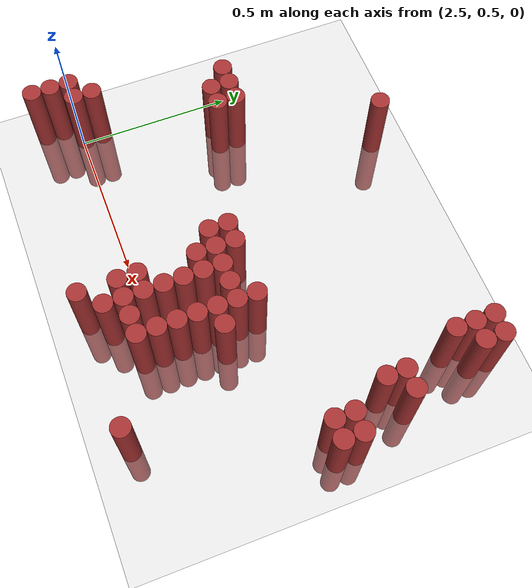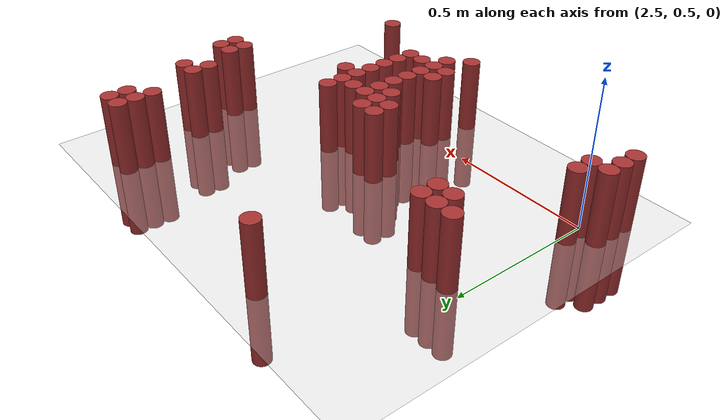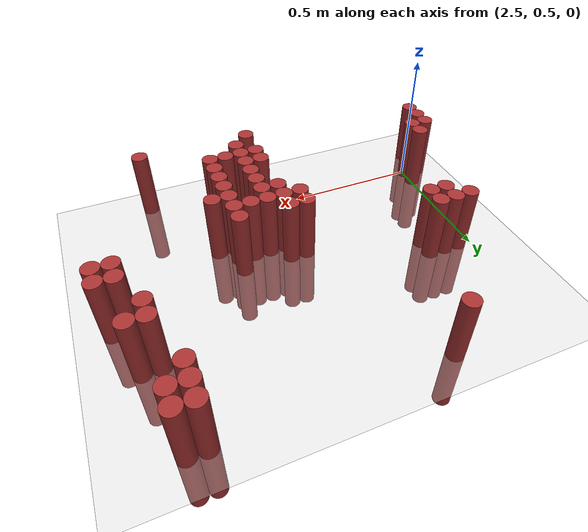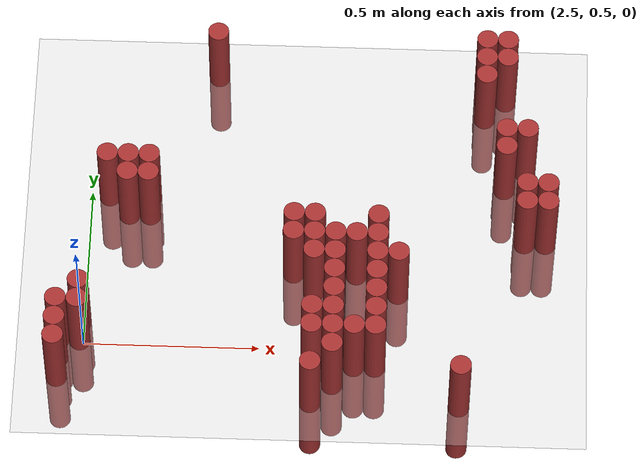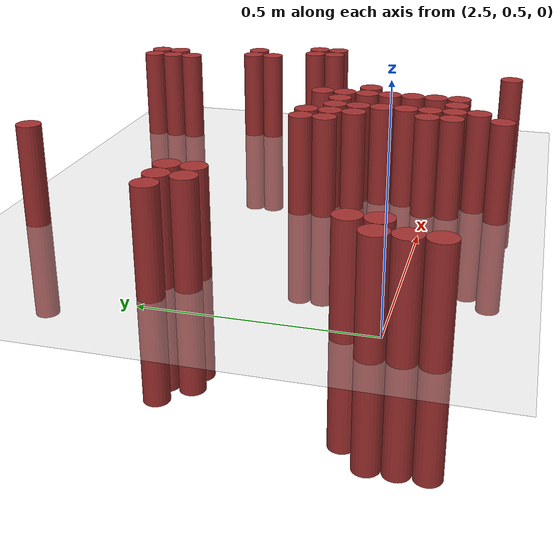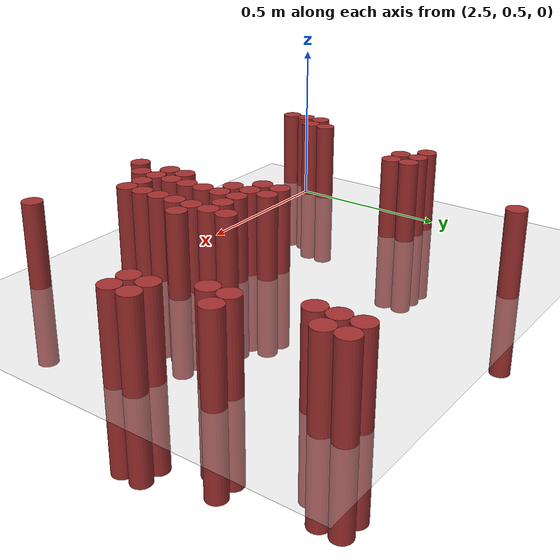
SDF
<sdf version="1.6">
 <world name="default">
  <model name="ground_plane">
   <static>1</static>
   <link name="link">
    <collision name="collision">
     <geometry><plane><normal>0 0 1</normal><size>100 100</size></plane></geometry>
     <surface><friction><ode><mu>100</mu><mu2>50</mu2></ode></friction></surface>
    </collision>
    <visual name="visual">
     <cast_shadows>0</cast_shadows>
     <geometry><plane><normal>0 0 1</normal><size>100 100</size></plane></geometry>
     <material>
      <script><uri>file://media/materials/scripts/gazebo.material</uri><name>Gazebo/Grey</name></script>
     </material>
    </visual>
   </link>
  </model>
  <model name="unit_cylinder_164">
   <static>1</static>
   <pose>2.850000 1.410000 0.000000 0.000000 0.000000 0.000000</pose>
   <link name="link">
    <inertial>
     <mass>1</mass>
     <inertia><ixx>0.145833</ixx><ixy>0</ixy><ixz>0</ixz><iyy>0.145833</iyy><iyz>0</iyz><izz>0.125</izz></inertia>
    </inertial>
    <collision name="collision">
     <geometry><cylinder><radius>0.030000</radius><length>0.5</length></cylinder></geometry>
    </collision>
    <visual name="visual">
     <geometry><cylinder><radius>0.030000</radius><length>0.5</length></cylinder></geometry>
     <material>
      <ambient>0.648000 0.192000 0.192000 1</ambient>
      <diffuse>0.648000 0.192000 0.192000 1</diffuse>
     </material>
     <material>
      <script><name>Gazebo/Grey</name><uri>file://media/materials/scripts/gazebo.material</uri></script>
     </material>
    </visual>
   </link>
  </model>
  <model name="unit_cylinder_165">
   <static>1</static>
   <pose>3.630000 1.410000 0.000000 0.000000 0.000000 0.000000</pose>
   <link name="link">
    <inertial>
     <mass>1</mass>
     <inertia><ixx>0.145833</ixx><ixy>0</ixy><ixz>0</ixz><iyy>0.145833</iyy><iyz>0</iyz><izz>0.125</izz></inertia>
    </inertial>
    <collision name="collision">
     <geometry><cylinder><radius>0.030000</radius><length>0.5</length></cylinder></geometry>
    </collision>
    <visual name="visual">
     <geometry><cylinder><radius>0.030000</radius><length>0.5</length></cylinder></geometry>
     <material>
      <ambient>0.648000 0.192000 0.192000 1</ambient>
      <diffuse>0.648000 0.192000 0.192000 1</diffuse>
     </material>
     <material>
      <script><name>Gazebo/Grey</name><uri>file://media/materials/scripts/gazebo.material</uri></script>
     </material>
    </visual>
   </link>
  </model>
  <model name="unit_cylinder_166">
   <static>1</static>
   <pose>3.690000 1.410000 0.000000 0.000000 0.000000 0.000000</pose>
   <link name="link">
    <inertial>
     <mass>1</mass>
     <inertia><ixx>0.145833</ixx><ixy>0</ixy><ixz>0</ixz><iyy>0.145833</iyy><iyz>0</iyz><izz>0.125</izz></inertia>
    </inertial>
    <collision name="collision">
     <geometry><cylinder><radius>0.030000</radius><length>0.5</length></cylinder></geometry>
    </collision>
    <visual name="visual">
     <geometry><cylinder><radius>0.030000</radius><length>0.5</length></cylinder></geometry>
     <material>
      <ambient>0.648000 0.192000 0.192000 1</ambient>
      <diffuse>0.648000 0.192000 0.192000 1</diffuse>
     </material>
     <material>
      <script><name>Gazebo/Grey</name><uri>file://media/materials/scripts/gazebo.material</uri></script>
     </material>
    </visual>
   </link>
  </model>
  <model name="unit_cylinder_168">
   <static>1</static>
   <pose>3.630000 1.350000 0.000000 0.000000 0.000000 0.000000</pose>
   <link name="link">
    <inertial>
     <mass>1</mass>
     <inertia><ixx>0.145833</ixx><ixy>0</ixy><ixz>0</ixz><iyy>0.145833</iyy><iyz>0</iyz><izz>0.125</izz></inertia>
    </inertial>
    <collision name="collision">
     <geometry><cylinder><radius>0.030000</radius><length>0.5</length></cylinder></geometry>
    </collision>
    <visual name="visual">
     <geometry><cylinder><radius>0.030000</radius><length>0.5</length></cylinder></geometry>
     <material>
      <ambient>0.648000 0.192000 0.192000 1</ambient>
      <diffuse>0.648000 0.192000 0.192000 1</diffuse>
     </material>
     <material>
      <script><name>Gazebo/Grey</name><uri>file://media/materials/scripts/gazebo.material</uri></script>
     </material>
    </visual>
   </link>
  </model>
  <model name="unit_cylinder_169">
   <static>1</static>
   <pose>3.690000 1.350000 0.000000 0.000000 0.000000 0.000000</pose>
   <link name="link">
    <inertial>
     <mass>1</mass>
     <inertia><ixx>0.145833</ixx><ixy>0</ixy><ixz>0</ixz><iyy>0.145833</iyy><iyz>0</iyz><izz>0.125</izz></inertia>
    </inertial>
    <collision name="collision">
     <geometry><cylinder><radius>0.030000</radius><length>0.5</length></cylinder></geometry>
    </collision>
    <visual name="visual">
     <geometry><cylinder><radius>0.030000</radius><length>0.5</length></cylinder></geometry>
     <material>
      <ambient>0.648000 0.192000 0.192000 1</ambient>
      <diffuse>0.648000 0.192000 0.192000 1</diffuse>
     </material>
     <material>
      <script><name>Gazebo/Grey</name><uri>file://media/materials/scripts/gazebo.material</uri></script>
     </material>
    </visual>
   </link>
  </model>
  <model name="unit_cylinder_170">
   <static>1</static>
   <pose>3.630000 1.290000 0.000000 0.000000 0.000000 0.000000</pose>
   <link name="link">
    <inertial>
     <mass>1</mass>
     <inertia><ixx>0.145833</ixx><ixy>0</ixy><ixz>0</ixz><iyy>0.145833</iyy><iyz>0</iyz><izz>0.125</izz></inertia>
    </inertial>
    <collision name="collision">
     <geometry><cylinder><radius>0.030000</radius><length>0.5</length></cylinder></geometry>
    </collision>
    <visual name="visual">
     <geometry><cylinder><radius>0.030000</radius><length>0.5</length></cylinder></geometry>
     <material>
      <ambient>0.648000 0.192000 0.192000 1</ambient>
      <diffuse>0.648000 0.192000 0.192000 1</diffuse>
     </material>
     <material>
      <script><name>Gazebo/Grey</name><uri>file://media/materials/scripts/gazebo.material</uri></script>
     </material>
    </visual>
   </link>
  </model>
  <model name="unit_cylinder_174">
   <static>1</static>
   <pose>3.690000 1.110000 0.000000 0.000000 0.000000 0.000000</pose>
   <link name="link">
    <inertial>
     <mass>1</mass>
     <inertia><ixx>0.145833</ixx><ixy>0</ixy><ixz>0</ixz><iyy>0.145833</iyy><iyz>0</iyz><izz>0.125</izz></inertia>
    </inertial>
    <collision name="collision">
     <geometry><cylinder><radius>0.030000</radius><length>0.5</length></cylinder></geometry>
    </collision>
    <visual name="visual">
     <geometry><cylinder><radius>0.030000</radius><length>0.5</length></cylinder></geometry>
     <material>
      <ambient>0.648000 0.192000 0.192000 1</ambient>
      <diffuse>0.648000 0.192000 0.192000 1</diffuse>
     </material>
     <material>
      <script><name>Gazebo/Grey</name><uri>file://media/materials/scripts/gazebo.material</uri></script>
     </material>
    </visual>
   </link>
  </model>
  <model name="unit_cylinder_175">
   <static>1</static>
   <pose>3.750000 1.110000 0.000000 0.000000 0.000000 0.000000</pose>
   <link name="link">
    <inertial>
     <mass>1</mass>
     <inertia><ixx>0.145833</ixx><ixy>0</ixy><ixz>0</ixz><iyy>0.145833</iyy><iyz>0</iyz><izz>0.125</izz></inertia>
    </inertial>
    <collision name="collision">
     <geometry><cylinder><radius>0.030000</radius><length>0.5</length></cylinder></geometry>
    </collision>
    <visual name="visual">
     <geometry><cylinder><radius>0.030000</radius><length>0.5</length></cylinder></geometry>
     <material>
      <ambient>0.648000 0.192000 0.192000 1</ambient>
      <diffuse>0.648000 0.192000 0.192000 1</diffuse>
     </material>
     <material>
      <script><name>Gazebo/Grey</name><uri>file://media/materials/scripts/gazebo.material</uri></script>
     </material>
    </visual>
   </link>
  </model>
  <model name="unit_cylinder_177">
   <static>1</static>
   <pose>3.690000 1.050000 0.000000 0.000000 0.000000 0.000000</pose>
   <link name="link">
    <inertial>
     <mass>1</mass>
     <inertia><ixx>0.145833</ixx><ixy>0</ixy><ixz>0</ixz><iyy>0.145833</iyy><iyz>0</iyz><izz>0.125</izz></inertia>
    </inertial>
    <collision name="collision">
     <geometry><cylinder><radius>0.030000</radius><length>0.5</length></cylinder></geometry>
    </collision>
    <visual name="visual">
     <geometry><cylinder><radius>0.030000</radius><length>0.5</length></cylinder></geometry>
     <material>
      <ambient>0.648000 0.192000 0.192000 1</ambient>
      <diffuse>0.648000 0.192000 0.192000 1</diffuse>
     </material>
     <material>
      <script><name>Gazebo/Grey</name><uri>file://media/materials/scripts/gazebo.material</uri></script>
     </material>
    </visual>
   </link>
  </model>
  <model name="unit_cylinder_180">
   <static>1</static>
   <pose>2.550000 0.990000 0.000000 0.000000 0.000000 0.000000</pose>
   <link name="link">
    <inertial>
     <mass>1</mass>
     <inertia><ixx>0.145833</ixx><ixy>0</ixy><ixz>0</ixz><iyy>0.145833</iyy><iyz>0</iyz><izz>0.125</izz></inertia>
    </inertial>
    <collision name="collision">
     <geometry><cylinder><radius>0.030000</radius><length>0.5</length></cylinder></geometry>
    </collision>
    <visual name="visual">
     <geometry><cylinder><radius>0.030000</radius><length>0.5</length></cylinder></geometry>
     <material>
      <ambient>0.648000 0.192000 0.192000 1</ambient>
      <diffuse>0.648000 0.192000 0.192000 1</diffuse>
     </material>
     <material>
      <script><name>Gazebo/Grey</name><uri>file://media/materials/scripts/gazebo.material</uri></script>
     </material>
    </visual>
   </link>
  </model>
  <model name="unit_cylinder_181">
   <static>1</static>
   <pose>2.610000 0.990000 0.000000 0.000000 0.000000 0.000000</pose>
   <link name="link">
    <inertial>
     <mass>1</mass>
     <inertia><ixx>0.145833</ixx><ixy>0</ixy><ixz>0</ixz><iyy>0.145833</iyy><iyz>0</iyz><izz>0.125</izz></inertia>
    </inertial>
    <collision name="collision">
     <geometry><cylinder><radius>0.030000</radius><length>0.5</length></cylinder></geometry>
    </collision>
    <visual name="visual">
     <geometry><cylinder><radius>0.030000</radius><length>0.5</length></cylinder></geometry>
     <material>
      <ambient>0.648000 0.192000 0.192000 1</ambient>
      <diffuse>0.648000 0.192000 0.192000 1</diffuse>
     </material>
     <material>
      <script><name>Gazebo/Grey</name><uri>file://media/materials/scripts/gazebo.material</uri></script>
     </material>
    </visual>
   </link>
  </model>
  <model name="unit_cylinder_182">
   <static>1</static>
   <pose>2.670000 0.990000 0.000000 0.000000 0.000000 0.000000</pose>
   <link name="link">
    <inertial>
     <mass>1</mass>
     <inertia><ixx>0.145833</ixx><ixy>0</ixy><ixz>0</ixz><iyy>0.145833</iyy><iyz>0</iyz><izz>0.125</izz></inertia>
    </inertial>
    <collision name="collision">
     <geometry><cylinder><radius>0.030000</radius><length>0.5</length></cylinder></geometry>
    </collision>
    <visual name="visual">
     <geometry><cylinder><radius>0.030000</radius><length>0.5</length></cylinder></geometry>
     <material>
      <ambient>0.648000 0.192000 0.192000 1</ambient>
      <diffuse>0.648000 0.192000 0.192000 1</diffuse>
     </material>
     <material>
      <script><name>Gazebo/Grey</name><uri>file://media/materials/scripts/gazebo.material</uri></script>
     </material>
    </visual>
   </link>
  </model>
  <model name="unit_cylinder_185">
   <static>1</static>
   <pose>2.610000 0.930000 0.000000 0.000000 0.000000 0.000000</pose>
   <link name="link">
    <inertial>
     <mass>1</mass>
     <inertia><ixx>0.145833</ixx><ixy>0</ixy><ixz>0</ixz><iyy>0.145833</iyy><iyz>0</iyz><izz>0.125</izz></inertia>
    </inertial>
    <collision name="collision">
     <geometry><cylinder><radius>0.030000</radius><length>0.5</length></cylinder></geometry>
    </collision>
    <visual name="visual">
     <geometry><cylinder><radius>0.030000</radius><length>0.5</length></cylinder></geometry>
     <material>
      <ambient>0.648000 0.192000 0.192000 1</ambient>
      <diffuse>0.648000 0.192000 0.192000 1</diffuse>
     </material>
     <material>
      <script><name>Gazebo/Grey</name><uri>file://media/materials/scripts/gazebo.material</uri></script>
     </material>
    </visual>
   </link>
  </model>
  <model name="unit_cylinder_186">
   <static>1</static>
   <pose>2.670000 0.930000 0.000000 0.000000 0.000000 0.000000</pose>
   <link name="link">
    <inertial>
     <mass>1</mass>
     <inertia><ixx>0.145833</ixx><ixy>0</ixy><ixz>0</ixz><iyy>0.145833</iyy><iyz>0</iyz><izz>0.125</izz></inertia>
    </inertial>
    <collision name="collision">
     <geometry><cylinder><radius>0.030000</radius><length>0.5</length></cylinder></geometry>
    </collision>
    <visual name="visual">
     <geometry><cylinder><radius>0.030000</radius><length>0.5</length></cylinder></geometry>
     <material>
      <ambient>0.648000 0.192000 0.192000 1</ambient>
      <diffuse>0.648000 0.192000 0.192000 1</diffuse>
     </material>
     <material>
      <script><name>Gazebo/Grey</name><uri>file://media/materials/scripts/gazebo.material</uri></script>
     </material>
    </visual>
   </link>
  </model>
  <model name="unit_cylinder_187">
   <static>1</static>
   <pose>3.750000 0.930000 0.000000 0.000000 0.000000 0.000000</pose>
   <link name="link">
    <inertial>
     <mass>1</mass>
     <inertia><ixx>0.145833</ixx><ixy>0</ixy><ixz>0</ixz><iyy>0.145833</iyy><iyz>0</iyz><izz>0.125</izz></inertia>
    </inertial>
    <collision name="collision">
     <geometry><cylinder><radius>0.030000</radius><length>0.5</length></cylinder></geometry>
    </collision>
    <visual name="visual">
     <geometry><cylinder><radius>0.030000</radius><length>0.5</length></cylinder></geometry>
     <material>
      <ambient>0.648000 0.192000 0.192000 1</ambient>
      <diffuse>0.648000 0.192000 0.192000 1</diffuse>
     </material>
     <material>
      <script><name>Gazebo/Grey</name><uri>file://media/materials/scripts/gazebo.material</uri></script>
     </material>
    </visual>
   </link>
  </model>
  <model name="unit_cylinder_188">
   <static>1</static>
   <pose>3.810000 0.930000 0.000000 0.000000 0.000000 0.000000</pose>
   <link name="link">
    <inertial>
     <mass>1</mass>
     <inertia><ixx>0.145833</ixx><ixy>0</ixy><ixz>0</ixz><iyy>0.145833</iyy><iyz>0</iyz><izz>0.125</izz></inertia>
    </inertial>
    <collision name="collision">
     <geometry><cylinder><radius>0.030000</radius><length>0.5</length></cylinder></geometry>
    </collision>
    <visual name="visual">
     <geometry><cylinder><radius>0.030000</radius><length>0.5</length></cylinder></geometry>
     <material>
      <ambient>0.648000 0.192000 0.192000 1</ambient>
      <diffuse>0.648000 0.192000 0.192000 1</diffuse>
     </material>
     <material>
      <script><name>Gazebo/Grey</name><uri>file://media/materials/scripts/gazebo.material</uri></script>
     </material>
    </visual>
   </link>
  </model>
  <model name="unit_cylinder_189">
   <static>1</static>
   <pose>3.750000 0.870000 0.000000 0.000000 0.000000 0.000000</pose>
   <link name="link">
    <inertial>
     <mass>1</mass>
     <inertia><ixx>0.145833</ixx><ixy>0</ixy><ixz>0</ixz><iyy>0.145833</iyy><iyz>0</iyz><izz>0.125</izz></inertia>
    </inertial>
    <collision name="collision">
     <geometry><cylinder><radius>0.030000</radius><length>0.5</length></cylinder></geometry>
    </collision>
    <visual name="visual">
     <geometry><cylinder><radius>0.030000</radius><length>0.5</length></cylinder></geometry>
     <material>
      <ambient>0.648000 0.192000 0.192000 1</ambient>
      <diffuse>0.648000 0.192000 0.192000 1</diffuse>
     </material>
     <material>
      <script><name>Gazebo/Grey</name><uri>file://media/materials/scripts/gazebo.material</uri></script>
     </material>
    </visual>
   </link>
  </model>
  <model name="unit_cylinder_190">
   <static>1</static>
   <pose>3.810000 0.870000 0.000000 0.000000 0.000000 0.000000</pose>
   <link name="link">
    <inertial>
     <mass>1</mass>
     <inertia><ixx>0.145833</ixx><ixy>0</ixy><ixz>0</ixz><iyy>0.145833</iyy><iyz>0</iyz><izz>0.125</izz></inertia>
    </inertial>
    <collision name="collision">
     <geometry><cylinder><radius>0.030000</radius><length>0.5</length></cylinder></geometry>
    </collision>
    <visual name="visual">
     <geometry><cylinder><radius>0.030000</radius><length>0.5</length></cylinder></geometry>
     <material>
      <ambient>0.648000 0.192000 0.192000 1</ambient>
      <diffuse>0.648000 0.192000 0.192000 1</diffuse>
     </material>
     <material>
      <script><name>Gazebo/Grey</name><uri>file://media/materials/scripts/gazebo.material</uri></script>
     </material>
    </visual>
   </link>
  </model>
  <model name="unit_cylinder_191">
   <static>1</static>
   <pose>3.090000 0.810000 0.000000 0.000000 0.000000 0.000000</pose>
   <link name="link">
    <inertial>
     <mass>1</mass>
     <inertia><ixx>0.145833</ixx><ixy>0</ixy><ixz>0</ixz><iyy>0.145833</iyy><iyz>0</iyz><izz>0.125</izz></inertia>
    </inertial>
    <collision name="collision">
     <geometry><cylinder><radius>0.030000</radius><length>0.5</length></cylinder></geometry>
    </collision>
    <visual name="visual">
     <geometry><cylinder><radius>0.030000</radius><length>0.5</length></cylinder></geometry>
     <material>
      <ambient>0.648000 0.192000 0.192000 1</ambient>
      <diffuse>0.648000 0.192000 0.192000 1</diffuse>
     </material>
     <material>
      <script><name>Gazebo/Grey</name><uri>file://media/materials/scripts/gazebo.material</uri></script>
     </material>
    </visual>
   </link>
  </model>
  <model name="unit_cylinder_192">
   <static>1</static>
   <pose>3.150000 0.810000 0.000000 0.000000 0.000000 0.000000</pose>
   <link name="link">
    <inertial>
     <mass>1</mass>
     <inertia><ixx>0.145833</ixx><ixy>0</ixy><ixz>0</ixz><iyy>0.145833</iyy><iyz>0</iyz><izz>0.125</izz></inertia>
    </inertial>
    <collision name="collision">
     <geometry><cylinder><radius>0.030000</radius><length>0.5</length></cylinder></geometry>
    </collision>
    <visual name="visual">
     <geometry><cylinder><radius>0.030000</radius><length>0.5</length></cylinder></geometry>
     <material>
      <ambient>0.648000 0.192000 0.192000 1</ambient>
      <diffuse>0.648000 0.192000 0.192000 1</diffuse>
     </material>
     <material>
      <script><name>Gazebo/Grey</name><uri>file://media/materials/scripts/gazebo.material</uri></script>
     </material>
    </visual>
   </link>
  </model>
  <model name="unit_cylinder_193">
   <static>1</static>
   <pose>3.330000 0.810000 0.000000 0.000000 0.000000 0.000000</pose>
   <link name="link">
    <inertial>
     <mass>1</mass>
     <inertia><ixx>0.145833</ixx><ixy>0</ixy><ixz>0</ixz><iyy>0.145833</iyy><iyz>0</iyz><izz>0.125</izz></inertia>
    </inertial>
    <collision name="collision">
     <geometry><cylinder><radius>0.030000</radius><length>0.5</length></cylinder></geometry>
    </collision>
    <visual name="visual">
     <geometry><cylinder><radius>0.030000</radius><length>0.5</length></cylinder></geometry>
     <material>
      <ambient>0.648000 0.192000 0.192000 1</ambient>
      <diffuse>0.648000 0.192000 0.192000 1</diffuse>
     </material>
     <material>
      <script><name>Gazebo/Grey</name><uri>file://media/materials/scripts/gazebo.material</uri></script>
     </material>
    </visual>
   </link>
  </model>
  <model name="unit_cylinder_194">
   <static>1</static>
   <pose>3.090000 0.750000 0.000000 0.000000 0.000000 0.000000</pose>
   <link name="link">
    <inertial>
     <mass>1</mass>
     <inertia><ixx>0.145833</ixx><ixy>0</ixy><ixz>0</ixz><iyy>0.145833</iyy><iyz>0</iyz><izz>0.125</izz></inertia>
    </inertial>
    <collision name="collision">
     <geometry><cylinder><radius>0.030000</radius><length>0.5</length></cylinder></geometry>
    </collision>
    <visual name="visual">
     <geometry><cylinder><radius>0.030000</radius><length>0.5</length></cylinder></geometry>
     <material>
      <ambient>0.648000 0.192000 0.192000 1</ambient>
      <diffuse>0.648000 0.192000 0.192000 1</diffuse>
     </material>
     <material>
      <script><name>Gazebo/Grey</name><uri>file://media/materials/scripts/gazebo.material</uri></script>
     </material>
    </visual>
   </link>
  </model>
  <model name="unit_cylinder_195">
   <static>1</static>
   <pose>3.150000 0.750000 0.000000 0.000000 0.000000 0.000000</pose>
   <link name="link">
    <inertial>
     <mass>1</mass>
     <inertia><ixx>0.145833</ixx><ixy>0</ixy><ixz>0</ixz><iyy>0.145833</iyy><iyz>0</iyz><izz>0.125</izz></inertia>
    </inertial>
    <collision name="collision">
     <geometry><cylinder><radius>0.030000</radius><length>0.5</length></cylinder></geometry>
    </collision>
    <visual name="visual">
     <geometry><cylinder><radius>0.030000</radius><length>0.5</length></cylinder></geometry>
     <material>
      <ambient>0.648000 0.192000 0.192000 1</ambient>
      <diffuse>0.648000 0.192000 0.192000 1</diffuse>
     </material>
     <material>
      <script><name>Gazebo/Grey</name><uri>file://media/materials/scripts/gazebo.material</uri></script>
     </material>
    </visual>
   </link>
  </model>
  <model name="unit_cylinder_196">
   <static>1</static>
   <pose>3.210000 0.750000 0.000000 0.000000 0.000000 0.000000</pose>
   <link name="link">
    <inertial>
     <mass>1</mass>
     <inertia><ixx>0.145833</ixx><ixy>0</ixy><ixz>0</ixz><iyy>0.145833</iyy><iyz>0</iyz><izz>0.125</izz></inertia>
    </inertial>
    <collision name="collision">
     <geometry><cylinder><radius>0.030000</radius><length>0.5</length></cylinder></geometry>
    </collision>
    <visual name="visual">
     <geometry><cylinder><radius>0.030000</radius><length>0.5</length></cylinder></geometry>
     <material>
      <ambient>0.648000 0.192000 0.192000 1</ambient>
      <diffuse>0.648000 0.192000 0.192000 1</diffuse>
     </material>
     <material>
      <script><name>Gazebo/Grey</name><uri>file://media/materials/scripts/gazebo.material</uri></script>
     </material>
    </visual>
   </link>
  </model>
  <model name="unit_cylinder_197">
   <static>1</static>
   <pose>3.270000 0.750000 0.000000 0.000000 0.000000 0.000000</pose>
   <link name="link">
    <inertial>
     <mass>1</mass>
     <inertia><ixx>0.145833</ixx><ixy>0</ixy><ixz>0</ixz><iyy>0.145833</iyy><iyz>0</iyz><izz>0.125</izz></inertia>
    </inertial>
    <collision name="collision">
     <geometry><cylinder><radius>0.030000</radius><length>0.5</length></cylinder></geometry>
    </collision>
    <visual name="visual">
     <geometry><cylinder><radius>0.030000</radius><length>0.5</length></cylinder></geometry>
     <material>
      <ambient>0.648000 0.192000 0.192000 1</ambient>
      <diffuse>0.648000 0.192000 0.192000 1</diffuse>
     </material>
     <material>
      <script><name>Gazebo/Grey</name><uri>file://media/materials/scripts/gazebo.material</uri></script>
     </material>
    </visual>
   </link>
  </model>
  <model name="unit_cylinder_198">
   <static>1</static>
   <pose>3.330000 0.750000 0.000000 0.000000 0.000000 0.000000</pose>
   <link name="link">
    <inertial>
     <mass>1</mass>
     <inertia><ixx>0.145833</ixx><ixy>0</ixy><ixz>0</ixz><iyy>0.145833</iyy><iyz>0</iyz><izz>0.125</izz></inertia>
    </inertial>
    <collision name="collision">
     <geometry><cylinder><radius>0.030000</radius><length>0.5</length></cylinder></geometry>
    </collision>
    <visual name="visual">
     <geometry><cylinder><radius>0.030000</radius><length>0.5</length></cylinder></geometry>
     <material>
      <ambient>0.648000 0.192000 0.192000 1</ambient>
      <diffuse>0.648000 0.192000 0.192000 1</diffuse>
     </material>
     <material>
      <script><name>Gazebo/Grey</name><uri>file://media/materials/scripts/gazebo.material</uri></script>
     </material>
    </visual>
   </link>
  </model>
  <model name="unit_cylinder_199">
   <static>1</static>
   <pose>3.150000 0.690000 0.000000 0.000000 0.000000 0.000000</pose>
   <link name="link">
    <inertial>
     <mass>1</mass>
     <inertia><ixx>0.145833</ixx><ixy>0</ixy><ixz>0</ixz><iyy>0.145833</iyy><iyz>0</iyz><izz>0.125</izz></inertia>
    </inertial>
    <collision name="collision">
     <geometry><cylinder><radius>0.030000</radius><length>0.5</length></cylinder></geometry>
    </collision>
    <visual name="visual">
     <geometry><cylinder><radius>0.030000</radius><length>0.5</length></cylinder></geometry>
     <material>
      <ambient>0.648000 0.192000 0.192000 1</ambient>
      <diffuse>0.648000 0.192000 0.192000 1</diffuse>
     </material>
     <material>
      <script><name>Gazebo/Grey</name><uri>file://media/materials/scripts/gazebo.material</uri></script>
     </material>
    </visual>
   </link>
  </model>
  <model name="unit_cylinder_200">
   <static>1</static>
   <pose>3.210000 0.690000 0.000000 0.000000 0.000000 0.000000</pose>
   <link name="link">
    <inertial>
     <mass>1</mass>
     <inertia><ixx>0.145833</ixx><ixy>0</ixy><ixz>0</ixz><iyy>0.145833</iyy><iyz>0</iyz><izz>0.125</izz></inertia>
    </inertial>
    <collision name="collision">
     <geometry><cylinder><radius>0.030000</radius><length>0.5</length></cylinder></geometry>
    </collision>
    <visual name="visual">
     <geometry><cylinder><radius>0.030000</radius><length>0.5</length></cylinder></geometry>
     <material>
      <ambient>0.648000 0.192000 0.192000 1</ambient>
      <diffuse>0.648000 0.192000 0.192000 1</diffuse>
     </material>
     <material>
      <script><name>Gazebo/Grey</name><uri>file://media/materials/scripts/gazebo.material</uri></script>
     </material>
    </visual>
   </link>
  </model>
  <model name="unit_cylinder_201">
   <static>1</static>
   <pose>3.330000 0.690000 0.000000 0.000000 0.000000 0.000000</pose>
   <link name="link">
    <inertial>
     <mass>1</mass>
     <inertia><ixx>0.145833</ixx><ixy>0</ixy><ixz>0</ixz><iyy>0.145833</iyy><iyz>0</iyz><izz>0.125</izz></inertia>
    </inertial>
    <collision name="collision">
     <geometry><cylinder><radius>0.030000</radius><length>0.5</length></cylinder></geometry>
    </collision>
    <visual name="visual">
     <geometry><cylinder><radius>0.030000</radius><length>0.5</length></cylinder></geometry>
     <material>
      <ambient>0.648000 0.192000 0.192000 1</ambient>
      <diffuse>0.648000 0.192000 0.192000 1</diffuse>
     </material>
     <material>
      <script><name>Gazebo/Grey</name><uri>file://media/materials/scripts/gazebo.material</uri></script>
     </material>
    </visual>
   </link>
  </model>
  <model name="unit_cylinder_202">
   <static>1</static>
   <pose>3.390000 0.690000 0.000000 0.000000 0.000000 0.000000</pose>
   <link name="link">
    <inertial>
     <mass>1</mass>
     <inertia><ixx>0.145833</ixx><ixy>0</ixy><ixz>0</ixz><iyy>0.145833</iyy><iyz>0</iyz><izz>0.125</izz></inertia>
    </inertial>
    <collision name="collision">
     <geometry><cylinder><radius>0.030000</radius><length>0.5</length></cylinder></geometry>
    </collision>
    <visual name="visual">
     <geometry><cylinder><radius>0.030000</radius><length>0.5</length></cylinder></geometry>
     <material>
      <ambient>0.648000 0.192000 0.192000 1</ambient>
      <diffuse>0.648000 0.192000 0.192000 1</diffuse>
     </material>
     <material>
      <script><name>Gazebo/Grey</name><uri>file://media/materials/scripts/gazebo.material</uri></script>
     </material>
    </visual>
   </link>
  </model>
  <model name="unit_cylinder_203">
   <static>1</static>
   <pose>3.210000 0.630000 0.000000 0.000000 0.000000 0.000000</pose>
   <link name="link">
    <inertial>
     <mass>1</mass>
     <inertia><ixx>0.145833</ixx><ixy>0</ixy><ixz>0</ixz><iyy>0.145833</iyy><iyz>0</iyz><izz>0.125</izz></inertia>
    </inertial>
    <collision name="collision">
     <geometry><cylinder><radius>0.030000</radius><length>0.5</length></cylinder></geometry>
    </collision>
    <visual name="visual">
     <geometry><cylinder><radius>0.030000</radius><length>0.5</length></cylinder></geometry>
     <material>
      <ambient>0.648000 0.192000 0.192000 1</ambient>
      <diffuse>0.648000 0.192000 0.192000 1</diffuse>
     </material>
     <material>
      <script><name>Gazebo/Grey</name><uri>file://media/materials/scripts/gazebo.material</uri></script>
     </material>
    </visual>
   </link>
  </model>
  <model name="unit_cylinder_204">
   <static>1</static>
   <pose>3.330000 0.630000 0.000000 0.000000 0.000000 0.000000</pose>
   <link name="link">
    <inertial>
     <mass>1</mass>
     <inertia><ixx>0.145833</ixx><ixy>0</ixy><ixz>0</ixz><iyy>0.145833</iyy><iyz>0</iyz><izz>0.125</izz></inertia>
    </inertial>
    <collision name="collision">
     <geometry><cylinder><radius>0.030000</radius><length>0.5</length></cylinder></geometry>
    </collision>
    <visual name="visual">
     <geometry><cylinder><radius>0.030000</radius><length>0.5</length></cylinder></geometry>
     <material>
      <ambient>0.648000 0.192000 0.192000 1</ambient>
      <diffuse>0.648000 0.192000 0.192000 1</diffuse>
     </material>
     <material>
      <script><name>Gazebo/Grey</name><uri>file://media/materials/scripts/gazebo.material</uri></script>
     </material>
    </visual>
   </link>
  </model>
  <model name="unit_cylinder_208">
   <static>1</static>
   <pose>2.490000 0.570000 0.000000 0.000000 0.000000 0.000000</pose>
   <link name="link">
    <inertial>
     <mass>1</mass>
     <inertia><ixx>0.145833</ixx><ixy>0</ixy><ixz>0</ixz><iyy>0.145833</iyy><iyz>0</iyz><izz>0.125</izz></inertia>
    </inertial>
    <collision name="collision">
     <geometry><cylinder><radius>0.030000</radius><length>0.5</length></cylinder></geometry>
    </collision>
    <visual name="visual">
     <geometry><cylinder><radius>0.030000</radius><length>0.5</length></cylinder></geometry>
     <material>
      <ambient>0.648000 0.192000 0.192000 1</ambient>
      <diffuse>0.648000 0.192000 0.192000 1</diffuse>
     </material>
     <material>
      <script><name>Gazebo/Grey</name><uri>file://media/materials/scripts/gazebo.material</uri></script>
     </material>
    </visual>
   </link>
  </model>
  <model name="unit_cylinder_209">
   <static>1</static>
   <pose>3.210000 0.570000 0.000000 0.000000 0.000000 0.000000</pose>
   <link name="link">
    <inertial>
     <mass>1</mass>
     <inertia><ixx>0.145833</ixx><ixy>0</ixy><ixz>0</ixz><iyy>0.145833</iyy><iyz>0</iyz><izz>0.125</izz></inertia>
    </inertial>
    <collision name="collision">
     <geometry><cylinder><radius>0.030000</radius><length>0.5</length></cylinder></geometry>
    </collision>
    <visual name="visual">
     <geometry><cylinder><radius>0.030000</radius><length>0.5</length></cylinder></geometry>
     <material>
      <ambient>0.648000 0.192000 0.192000 1</ambient>
      <diffuse>0.648000 0.192000 0.192000 1</diffuse>
     </material>
     <material>
      <script><name>Gazebo/Grey</name><uri>file://media/materials/scripts/gazebo.material</uri></script>
     </material>
    </visual>
   </link>
  </model>
  <model name="unit_cylinder_210">
   <static>1</static>
   <pose>3.330000 0.570000 0.000000 0.000000 0.000000 0.000000</pose>
   <link name="link">
    <inertial>
     <mass>1</mass>
     <inertia><ixx>0.145833</ixx><ixy>0</ixy><ixz>0</ixz><iyy>0.145833</iyy><iyz>0</iyz><izz>0.125</izz></inertia>
    </inertial>
    <collision name="collision">
     <geometry><cylinder><radius>0.030000</radius><length>0.5</length></cylinder></geometry>
    </collision>
    <visual name="visual">
     <geometry><cylinder><radius>0.030000</radius><length>0.5</length></cylinder></geometry>
     <material>
      <ambient>0.648000 0.192000 0.192000 1</ambient>
      <diffuse>0.648000 0.192000 0.192000 1</diffuse>
     </material>
     <material>
      <script><name>Gazebo/Grey</name><uri>file://media/materials/scripts/gazebo.material</uri></script>
     </material>
    </visual>
   </link>
  </model>
  <model name="unit_cylinder_212">
   <static>1</static>
   <pose>2.430000 0.510000 0.000000 0.000000 0.000000 0.000000</pose>
   <link name="link">
    <inertial>
     <mass>1</mass>
     <inertia><ixx>0.145833</ixx><ixy>0</ixy><ixz>0</ixz><iyy>0.145833</iyy><iyz>0</iyz><izz>0.125</izz></inertia>
    </inertial>
    <collision name="collision">
     <geometry><cylinder><radius>0.030000</radius><length>0.5</length></cylinder></geometry>
    </collision>
    <visual name="visual">
     <geometry><cylinder><radius>0.030000</radius><length>0.5</length></cylinder></geometry>
     <material>
      <ambient>0.648000 0.192000 0.192000 1</ambient>
      <diffuse>0.648000 0.192000 0.192000 1</diffuse>
     </material>
     <material>
      <script><name>Gazebo/Grey</name><uri>file://media/materials/scripts/gazebo.material</uri></script>
     </material>
    </visual>
   </link>
  </model>
  <model name="unit_cylinder_213">
   <static>1</static>
   <pose>2.490000 0.510000 0.000000 0.000000 0.000000 0.000000</pose>
   <link name="link">
    <inertial>
     <mass>1</mass>
     <inertia><ixx>0.145833</ixx><ixy>0</ixy><ixz>0</ixz><iyy>0.145833</iyy><iyz>0</iyz><izz>0.125</izz></inertia>
    </inertial>
    <collision name="collision">
     <geometry><cylinder><radius>0.030000</radius><length>0.5</length></cylinder></geometry>
    </collision>
    <visual name="visual">
     <geometry><cylinder><radius>0.030000</radius><length>0.5</length></cylinder></geometry>
     <material>
      <ambient>0.648000 0.192000 0.192000 1</ambient>
      <diffuse>0.648000 0.192000 0.192000 1</diffuse>
     </material>
     <material>
      <script><name>Gazebo/Grey</name><uri>file://media/materials/scripts/gazebo.material</uri></script>
     </material>
    </visual>
   </link>
  </model>
  <model name="unit_cylinder_214">
   <static>1</static>
   <pose>3.150000 0.510000 0.000000 0.000000 0.000000 0.000000</pose>
   <link name="link">
    <inertial>
     <mass>1</mass>
     <inertia><ixx>0.145833</ixx><ixy>0</ixy><ixz>0</ixz><iyy>0.145833</iyy><iyz>0</iyz><izz>0.125</izz></inertia>
    </inertial>
    <collision name="collision">
     <geometry><cylinder><radius>0.030000</radius><length>0.5</length></cylinder></geometry>
    </collision>
    <visual name="visual">
     <geometry><cylinder><radius>0.030000</radius><length>0.5</length></cylinder></geometry>
     <material>
      <ambient>0.648000 0.192000 0.192000 1</ambient>
      <diffuse>0.648000 0.192000 0.192000 1</diffuse>
     </material>
     <material>
      <script><name>Gazebo/Grey</name><uri>file://media/materials/scripts/gazebo.material</uri></script>
     </material>
    </visual>
   </link>
  </model>
  <model name="unit_cylinder_215">
   <static>1</static>
   <pose>3.210000 0.510000 0.000000 0.000000 0.000000 0.000000</pose>
   <link name="link">
    <inertial>
     <mass>1</mass>
     <inertia><ixx>0.145833</ixx><ixy>0</ixy><ixz>0</ixz><iyy>0.145833</iyy><iyz>0</iyz><izz>0.125</izz></inertia>
    </inertial>
    <collision name="collision">
     <geometry><cylinder><radius>0.030000</radius><length>0.5</length></cylinder></geometry>
    </collision>
    <visual name="visual">
     <geometry><cylinder><radius>0.030000</radius><length>0.5</length></cylinder></geometry>
     <material>
      <ambient>0.648000 0.192000 0.192000 1</ambient>
      <diffuse>0.648000 0.192000 0.192000 1</diffuse>
     </material>
     <material>
      <script><name>Gazebo/Grey</name><uri>file://media/materials/scripts/gazebo.material</uri></script>
     </material>
    </visual>
   </link>
  </model>
  <model name="unit_cylinder_216">
   <static>1</static>
   <pose>3.330000 0.510000 0.000000 0.000000 0.000000 0.000000</pose>
   <link name="link">
    <inertial>
     <mass>1</mass>
     <inertia><ixx>0.145833</ixx><ixy>0</ixy><ixz>0</ixz><iyy>0.145833</iyy><iyz>0</iyz><izz>0.125</izz></inertia>
    </inertial>
    <collision name="collision">
     <geometry><cylinder><radius>0.030000</radius><length>0.5</length></cylinder></geometry>
    </collision>
    <visual name="visual">
     <geometry><cylinder><radius>0.030000</radius><length>0.5</length></cylinder></geometry>
     <material>
      <ambient>0.648000 0.192000 0.192000 1</ambient>
      <diffuse>0.648000 0.192000 0.192000 1</diffuse>
     </material>
     <material>
      <script><name>Gazebo/Grey</name><uri>file://media/materials/scripts/gazebo.material</uri></script>
     </material>
    </visual>
   </link>
  </model>
  <model name="unit_cylinder_219">
   <static>1</static>
   <pose>2.430000 0.450000 0.000000 0.000000 0.000000 0.000000</pose>
   <link name="link">
    <inertial>
     <mass>1</mass>
     <inertia><ixx>0.145833</ixx><ixy>0</ixy><ixz>0</ixz><iyy>0.145833</iyy><iyz>0</iyz><izz>0.125</izz></inertia>
    </inertial>
    <collision name="collision">
     <geometry><cylinder><radius>0.030000</radius><length>0.5</length></cylinder></geometry>
    </collision>
    <visual name="visual">
     <geometry><cylinder><radius>0.030000</radius><length>0.5</length></cylinder></geometry>
     <material>
      <ambient>0.648000 0.192000 0.192000 1</ambient>
      <diffuse>0.648000 0.192000 0.192000 1</diffuse>
     </material>
     <material>
      <script><name>Gazebo/Grey</name><uri>file://media/materials/scripts/gazebo.material</uri></script>
     </material>
    </visual>
   </link>
  </model>
  <model name="unit_cylinder_220">
   <static>1</static>
   <pose>3.150000 0.450000 0.000000 0.000000 0.000000 0.000000</pose>
   <link name="link">
    <inertial>
     <mass>1</mass>
     <inertia><ixx>0.145833</ixx><ixy>0</ixy><ixz>0</ixz><iyy>0.145833</iyy><iyz>0</iyz><izz>0.125</izz></inertia>
    </inertial>
    <collision name="collision">
     <geometry><cylinder><radius>0.030000</radius><length>0.5</length></cylinder></geometry>
    </collision>
    <visual name="visual">
     <geometry><cylinder><radius>0.030000</radius><length>0.5</length></cylinder></geometry>
     <material>
      <ambient>0.648000 0.192000 0.192000 1</ambient>
      <diffuse>0.648000 0.192000 0.192000 1</diffuse>
     </material>
     <material>
      <script><name>Gazebo/Grey</name><uri>file://media/materials/scripts/gazebo.material</uri></script>
     </material>
    </visual>
   </link>
  </model>
  <model name="unit_cylinder_221">
   <static>1</static>
   <pose>3.210000 0.450000 0.000000 0.000000 0.000000 0.000000</pose>
   <link name="link">
    <inertial>
     <mass>1</mass>
     <inertia><ixx>0.145833</ixx><ixy>0</ixy><ixz>0</ixz><iyy>0.145833</iyy><iyz>0</iyz><izz>0.125</izz></inertia>
    </inertial>
    <collision name="collision">
     <geometry><cylinder><radius>0.030000</radius><length>0.5</length></cylinder></geometry>
    </collision>
    <visual name="visual">
     <geometry><cylinder><radius>0.030000</radius><length>0.5</length></cylinder></geometry>
     <material>
      <ambient>0.648000 0.192000 0.192000 1</ambient>
      <diffuse>0.648000 0.192000 0.192000 1</diffuse>
     </material>
     <material>
      <script><name>Gazebo/Grey</name><uri>file://media/materials/scripts/gazebo.material</uri></script>
     </material>
    </visual>
   </link>
  </model>
  <model name="unit_cylinder_222">
   <static>1</static>
   <pose>3.270000 0.450000 0.000000 0.000000 0.000000 0.000000</pose>
   <link name="link">
    <inertial>
     <mass>1</mass>
     <inertia><ixx>0.145833</ixx><ixy>0</ixy><ixz>0</ixz><iyy>0.145833</iyy><iyz>0</iyz><izz>0.125</izz></inertia>
    </inertial>
    <collision name="collision">
     <geometry><cylinder><radius>0.030000</radius><length>0.5</length></cylinder></geometry>
    </collision>
    <visual name="visual">
     <geometry><cylinder><radius>0.030000</radius><length>0.5</length></cylinder></geometry>
     <material>
      <ambient>0.648000 0.192000 0.192000 1</ambient>
      <diffuse>0.648000 0.192000 0.192000 1</diffuse>
     </material>
     <material>
      <script><name>Gazebo/Grey</name><uri>file://media/materials/scripts/gazebo.material</uri></script>
     </material>
    </visual>
   </link>
  </model>
  <model name="unit_cylinder_223">
   <static>1</static>
   <pose>3.330000 0.450000 0.000000 0.000000 0.000000 0.000000</pose>
   <link name="link">
    <inertial>
     <mass>1</mass>
     <inertia><ixx>0.145833</ixx><ixy>0</ixy><ixz>0</ixz><iyy>0.145833</iyy><iyz>0</iyz><izz>0.125</izz></inertia>
    </inertial>
    <collision name="collision">
     <geometry><cylinder><radius>0.030000</radius><length>0.5</length></cylinder></geometry>
    </collision>
    <visual name="visual">
     <geometry><cylinder><radius>0.030000</radius><length>0.5</length></cylinder></geometry>
     <material>
      <ambient>0.648000 0.192000 0.192000 1</ambient>
      <diffuse>0.648000 0.192000 0.192000 1</diffuse>
     </material>
     <material>
      <script><name>Gazebo/Grey</name><uri>file://media/materials/scripts/gazebo.material</uri></script>
     </material>
    </visual>
   </link>
  </model>
  <model name="unit_cylinder_226">
   <static>1</static>
   <pose>2.430000 0.390000 0.000000 0.000000 0.000000 0.000000</pose>
   <link name="link">
    <inertial>
     <mass>1</mass>
     <inertia><ixx>0.145833</ixx><ixy>0</ixy><ixz>0</ixz><iyy>0.145833</iyy><iyz>0</iyz><izz>0.125</izz></inertia>
    </inertial>
    <collision name="collision">
     <geometry><cylinder><radius>0.030000</radius><length>0.5</length></cylinder></geometry>
    </collision>
    <visual name="visual">
     <geometry><cylinder><radius>0.030000</radius><length>0.5</length></cylinder></geometry>
     <material>
      <ambient>0.648000 0.192000 0.192000 1</ambient>
      <diffuse>0.648000 0.192000 0.192000 1</diffuse>
     </material>
     <material>
      <script><name>Gazebo/Grey</name><uri>file://media/materials/scripts/gazebo.material</uri></script>
     </material>
    </visual>
   </link>
  </model>
  <model name="unit_cylinder_227">
   <static>1</static>
   <pose>3.210000 0.390000 0.000000 0.000000 0.000000 0.000000</pose>
   <link name="link">
    <inertial>
     <mass>1</mass>
     <inertia><ixx>0.145833</ixx><ixy>0</ixy><ixz>0</ixz><iyy>0.145833</iyy><iyz>0</iyz><izz>0.125</izz></inertia>
    </inertial>
    <collision name="collision">
     <geometry><cylinder><radius>0.030000</radius><length>0.5</length></cylinder></geometry>
    </collision>
    <visual name="visual">
     <geometry><cylinder><radius>0.030000</radius><length>0.5</length></cylinder></geometry>
     <material>
      <ambient>0.648000 0.192000 0.192000 1</ambient>
      <diffuse>0.648000 0.192000 0.192000 1</diffuse>
     </material>
     <material>
      <script><name>Gazebo/Grey</name><uri>file://media/materials/scripts/gazebo.material</uri></script>
     </material>
    </visual>
   </link>
  </model>
  <model name="unit_cylinder_233">
   <static>1</static>
   <pose>3.150000 0.330000 0.000000 0.000000 0.000000 0.000000</pose>
   <link name="link">
    <inertial>
     <mass>1</mass>
     <inertia><ixx>0.145833</ixx><ixy>0</ixy><ixz>0</ixz><iyy>0.145833</iyy><iyz>0</iyz><izz>0.125</izz></inertia>
    </inertial>
    <collision name="collision">
     <geometry><cylinder><radius>0.030000</radius><length>0.5</length></cylinder></geometry>
    </collision>
    <visual name="visual">
     <geometry><cylinder><radius>0.030000</radius><length>0.5</length></cylinder></geometry>
     <material>
      <ambient>0.648000 0.192000 0.192000 1</ambient>
      <diffuse>0.648000 0.192000 0.192000 1</diffuse>
     </material>
     <material>
      <script><name>Gazebo/Grey</name><uri>file://media/materials/scripts/gazebo.material</uri></script>
     </material>
    </visual>
   </link>
  </model>
  <model name="unit_cylinder_234">
   <static>1</static>
   <pose>3.570000 0.330000 0.000000 0.000000 0.000000 0.000000</pose>
   <link name="link">
    <inertial>
     <mass>1</mass>
     <inertia><ixx>0.145833</ixx><ixy>0</ixy><ixz>0</ixz><iyy>0.145833</iyy><iyz>0</iyz><izz>0.125</izz></inertia>
    </inertial>
    <collision name="collision">
     <geometry><cylinder><radius>0.030000</radius><length>0.5</length></cylinder></geometry>
    </collision>
    <visual name="visual">
     <geometry><cylinder><radius>0.030000</radius><length>0.5</length></cylinder></geometry>
     <material>
      <ambient>0.648000 0.192000 0.192000 1</ambient>
      <diffuse>0.648000 0.192000 0.192000 1</diffuse>
     </material>
     <material>
      <script><name>Gazebo/Grey</name><uri>file://media/materials/scripts/gazebo.material</uri></script>
     </material>
    </visual>
   </link>
  </model>
 </world>
</sdf>
